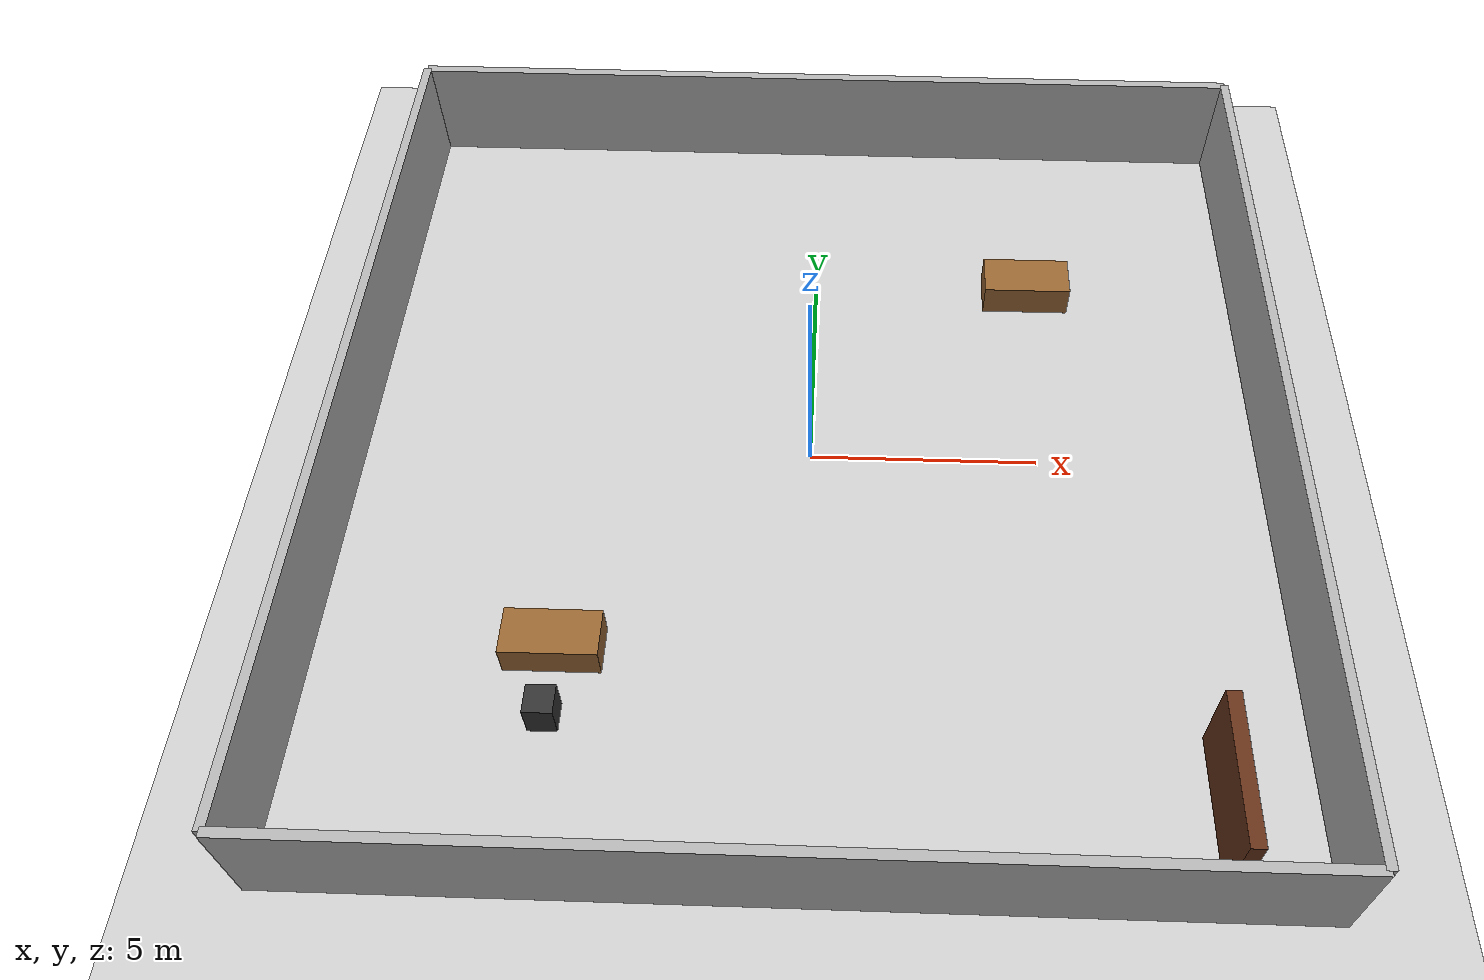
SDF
<?xml version="1.0" ?>
<sdf version="1.8">
  <world name="turtlebot3_office">

    <physics name="1ms" type="ignored">
      <max_step_size>0.001</max_step_size>
      <real_time_factor>1.0</real_time_factor>
    </physics>

    <plugin filename="gz-sim-physics-system" name="gz::sim::systems::Physics">
    </plugin>
    <plugin filename="gz-sim-user-commands-system" name="gz::sim::systems::UserCommands">
    </plugin>
    <plugin filename="gz-sim-scene-broadcaster-system" name="gz::sim::systems::SceneBroadcaster">
    </plugin>
    <plugin filename="gz-sim-sensors-system" name="gz::sim::systems::Sensors">
      <render_engine>ogre2</render_engine>
    </plugin>

    <scene>
      <ambient>0.4 0.4 0.4 1.0</ambient>
      <background>0.7 0.7 0.7 1.0</background>
      <shadows>true</shadows>
    </scene>

    <light type="directional" name="sun">
      <cast_shadows>true</cast_shadows>
      <pose>0 0 10 0 0 0</pose>
      <diffuse>0.8 0.8 0.8 1</diffuse>
      <specular>0.2 0.2 0.2 1</specular>
      <attenuation>
        <range>1000</range>
        <constant>0.9</constant>
        <linear>0.01</linear>
        <quadratic>0.001</quadratic>
      </attenuation>
      <direction>-0.5 0.1 -0.9</direction>
    </light>

    <model name="ground_plane">
      <static>true</static>
      <link name="link">
        <collision name="collision">
          <geometry>
            <plane>
              <normal>0 0 1</normal>
              <size>100 100</size>
            </plane>
          </geometry>
        </collision>
        <visual name="visual">
          <geometry>
            <plane>
              <normal>0 0 1</normal>
              <size>100 100</size>
            </plane>
          </geometry>
          <material>
            <ambient>0.8 0.8 0.8 1</ambient>
            <diffuse>0.8 0.8 0.8 1</diffuse>
            <specular>0.8 0.8 0.8 1</specular>
          </material>
        </visual>
      </link>
    </model>

    <!-- Office walls and layout -->
    <!-- Outer walls -->
    <model name="wall_north">
      <static>true</static>
      <pose>0 10 1.25 0 0 0</pose>
      <link name="link">
        <collision name="collision">
          <geometry>
            <box>
              <size>20 0.2 2.5</size>
            </box>
          </geometry>
        </collision>
        <visual name="visual">
          <geometry>
            <box>
              <size>20 0.2 2.5</size>
            </box>
          </geometry>
          <material>
            <ambient>0.7 0.7 0.7 1</ambient>
            <diffuse>0.7 0.7 0.7 1</diffuse>
          </material>
        </visual>
      </link>
    </model>

    <model name="wall_south">
      <static>true</static>
      <pose>0 -10 1.25 0 0 0</pose>
      <link name="link">
        <collision name="collision">
          <geometry>
            <box>
              <size>20 0.2 2.5</size>
            </box>
          </geometry>
        </collision>
        <visual name="visual">
          <geometry>
            <box>
              <size>20 0.2 2.5</size>
            </box>
          </geometry>
          <material>
            <ambient>0.7 0.7 0.7 1</ambient>
            <diffuse>0.7 0.7 0.7 1</diffuse>
          </material>
        </visual>
      </link>
    </model>

    <model name="wall_east">
      <static>true</static>
      <pose>10 0 1.25 0 0 0</pose>
      <link name="link">
        <collision name="collision">
          <geometry>
            <box>
              <size>0.2 20 2.5</size>
            </box>
          </geometry>
        </collision>
        <visual name="visual">
          <geometry>
            <box>
              <size>0.2 20 2.5</size>
            </box>
          </geometry>
          <material>
            <ambient>0.7 0.7 0.7 1</ambient>
            <diffuse>0.7 0.7 0.7 1</diffuse>
          </material>
        </visual>
      </link>
    </model>

    <model name="wall_west">
      <static>true</static>
      <pose>-10 0 1.25 0 0 0</pose>
      <link name="link">
        <collision name="collision">
          <geometry>
            <box>
              <size>0.2 20 2.5</size>
            </box>
          </geometry>
        </collision>
        <visual name="visual">
          <geometry>
            <box>
              <size>0.2 20 2.5</size>
            </box>
          </geometry>
          <material>
            <ambient>0.7 0.7 0.7 1</ambient>
            <diffuse>0.7 0.7 0.7 1</diffuse>
          </material>
        </visual>
      </link>
    </model>

    <!-- Office furniture -->
    <model name="desk1">
      <static>true</static>
      <pose>-5 -5 0.375 0 0 0</pose>
      <link name="link">
        <collision name="collision">
          <geometry>
            <box>
              <size>2 1 0.75</size>
            </box>
          </geometry>
        </collision>
        <visual name="visual">
          <geometry>
            <box>
              <size>2 1 0.75</size>
            </box>
          </geometry>
          <material>
            <ambient>0.6 0.4 0.2 1</ambient>
            <diffuse>0.6 0.4 0.2 1</diffuse>
          </material>
        </visual>
      </link>
    </model>

    <model name="desk2">
      <static>true</static>
      <pose>5 5 0.375 0 0 0</pose>
      <link name="link">
        <collision name="collision">
          <geometry>
            <box>
              <size>2 1 0.75</size>
            </box>
          </geometry>
        </collision>
        <visual name="visual">
          <geometry>
            <box>
              <size>2 1 0.75</size>
            </box>
          </geometry>
          <material>
            <ambient>0.6 0.4 0.2 1</ambient>
            <diffuse>0.6 0.4 0.2 1</diffuse>
          </material>
        </visual>
      </link>
    </model>

    <!-- Chair -->
    <model name="chair1">
      <static>true</static>
      <pose>-5 -6.5 0.4 0 0 0</pose>
      <link name="link">
        <collision name="collision">
          <geometry>
            <box>
              <size>0.6 0.6 0.8</size>
            </box>
          </geometry>
        </collision>
        <visual name="visual">
          <geometry>
            <box>
              <size>0.6 0.6 0.8</size>
            </box>
          </geometry>
          <material>
            <ambient>0.2 0.2 0.2 1</ambient>
            <diffuse>0.2 0.2 0.2 1</diffuse>
          </material>
        </visual>
      </link>
    </model>

    <!-- Bookshelf -->
    <model name="bookshelf">
      <static>true</static>
      <pose>8 -8 1 0 0 0</pose>
      <link name="link">
        <collision name="collision">
          <geometry>
            <box>
              <size>0.3 3 2</size>
            </box>
          </geometry>
        </collision>
        <visual name="visual">
          <geometry>
            <box>
              <size>0.3 3 2</size>
            </box>
          </geometry>
          <material>
            <ambient>0.4 0.2 0.1 1</ambient>
            <diffuse>0.4 0.2 0.1 1</diffuse>
          </material>
        </visual>
      </link>
    </model>

  </world>
</sdf>
